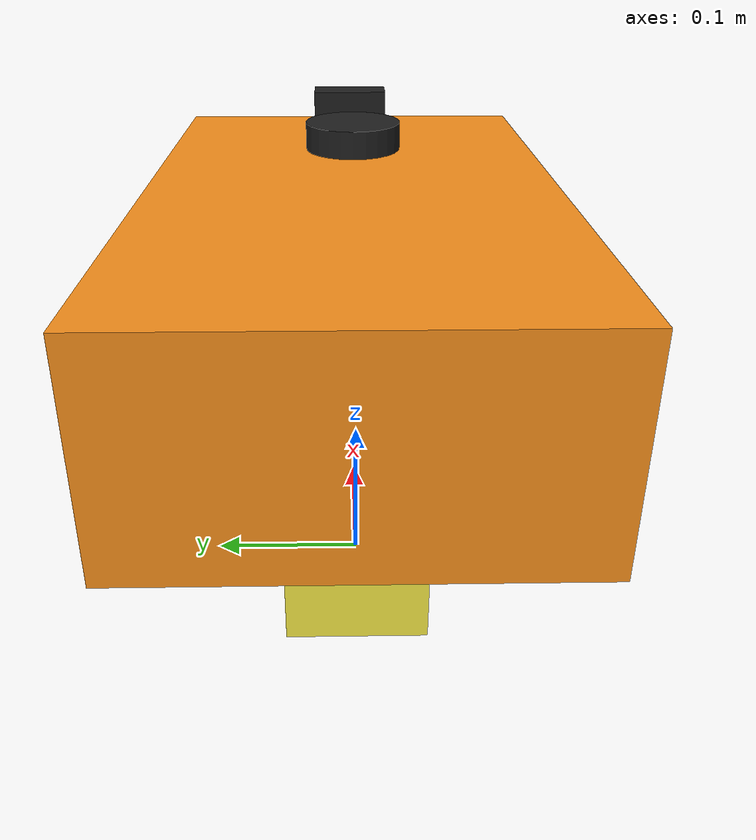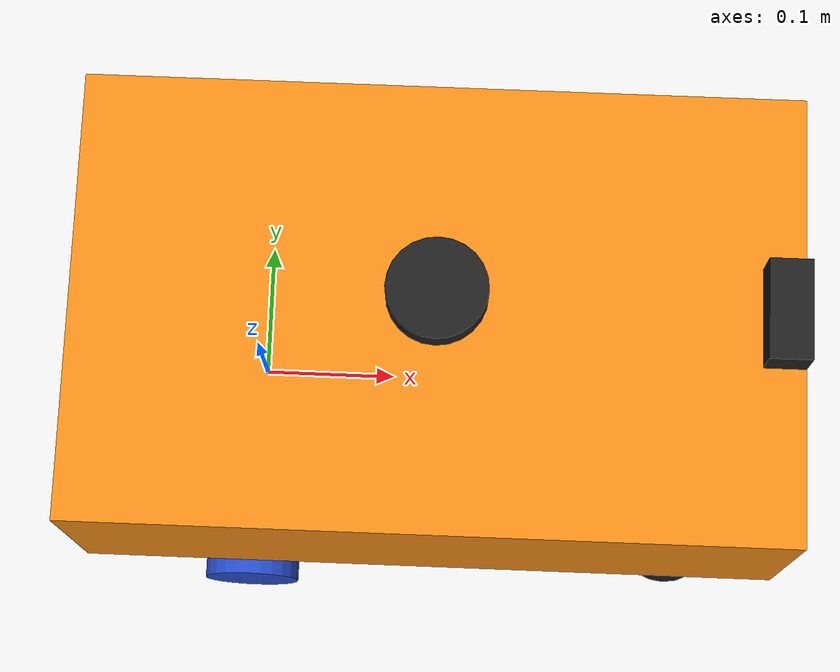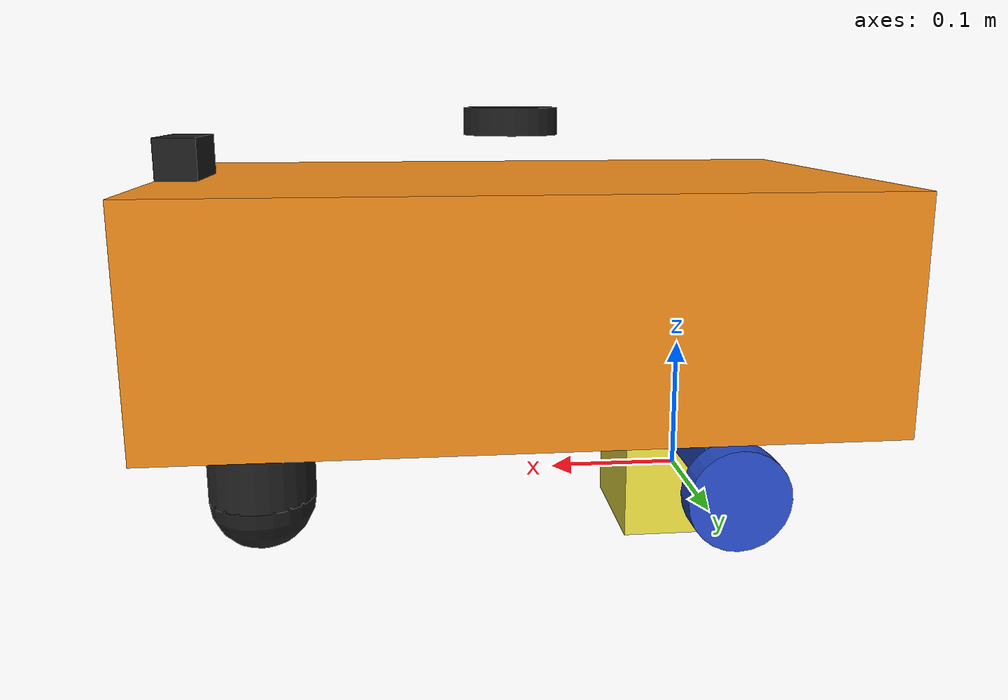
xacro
<?xml version="1.0"?>

<robot xmlns:xacro="http://www.ros.org/wiki/xacro" name="robot">
    <xacro:arg name = "use_ros2_control" default="true" />
    <xacro:arg name = "use_sim_mode" default="false" />

    <xacro:include filename="common_dimensions.xacro" />
    <xacro:include filename="colours.xacro" />
    <xacro:include filename="robot_chassis.xacro" />

    <xacro:if value = "$(arg use_ros2_control)">
        <xacro:include filename="ros2_control.xacro" />
    </xacro:if>

    <xacro:unless value = "$(arg use_ros2_control)">
        <xacro:include filename="gazebo_control.xacro" />
    </xacro:unless>

    <xacro:include filename="imu.xacro" />
    <xacro:include filename="camera.xacro" />
    <xacro:include filename="lidar.xacro" />
</robot>

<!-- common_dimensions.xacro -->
<robot xmlns:xacro="http://www.ros.org/wiki/xacro" >
    <xacro:property name="in_to_m" value="0.0254" />
    <xacro:property name="chassis_length_x" value="${20 * in_to_m}" />
    <xacro:property name="chassis_width_y" value="${12.5 * in_to_m}" />
    <xacro:property name="chassis_height_z" value="${6.5 * in_to_m}" />
    <xacro:property name="cor_to_rear_of_chassis" value="0.12" />
    <xacro:property name="front_of_chassis_to_caster" value="${3 * in_to_m}" />
    <xacro:property name="motor_length" value="0.1" />
    <xacro:property name="wheel_radius" value="0.035" />
    <xacro:property name="wheel_length" value="0.02" />
    <xacro:property name="caster_height" value="${wheel_radius * 2}" />

    <xacro:property name="inter_motor_distance" value="${4 * in_to_m}" />
    <xacro:property name="robot_height" value="${chassis_height_z + wheel_radius * 2}" />
</robot>

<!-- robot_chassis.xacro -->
<robot xmlns:xacro="http://www.ros.org/wiki/xacro" >

    <xacro:include filename="inertial_macros.xacro"/>

    <!-- BASE LINK -->
    <link name="base_link">

    </link>

    <!-- BASE FOOTPRINT LINK -->
    <joint name="base_footprint_joint" type="fixed">
        <parent link="base_link" />
        <child link="base_footprint" />
        <origin xyz="0 0 0" rpy="0 0 0" />
    </joint>

    <link name="base_footprint">

    </link>

    <!-- CHASSIS LINK -->
    <joint name="chassis_joint" type="fixed">
        <parent link="base_link"/>
        <child link="chassis"/>
        <origin xyz="-${cor_to_rear_of_chassis} 0 0"/>
    </joint>

    <link name="chassis">
        <visual>
            <origin xyz="${chassis_length_x / 2} 0 ${chassis_height_z / 2 + caster_height}"/>
            <geometry>
                <box size="${chassis_length_x} ${chassis_width_y} ${chassis_height_z}"/>
            </geometry>
            <material name="orange"/>
        </visual>
        <collision>
            <origin xyz="${chassis_length_x / 2} 0 ${chassis_height_z / 2 + caster_height}"/>
            <geometry>
                <box size="${chassis_length_x} ${chassis_width_y} ${chassis_height_z}"/>
            </geometry>
        </collision>
        <xacro:inertial_box mass="2.0" x="${chassis_length_x}" y="${chassis_width_y}" z="${chassis_height_z}">
            <origin xyz="${chassis_length_x / 2} 0 ${chassis_height_z + caster_height}" rpy="0 0 0"/>
        </xacro:inertial_box>
    </link>

    <gazebo reference="chassis">
        <material>Gazebo/Orange</material>
    </gazebo>

    <!-- LEFT WHEEL APPARATUS -->

    <joint name="left_wheel_strut_joint" type="fixed">
        <parent link="base_link" />
        <child link="left_wheel_strut" />
        <origin xyz="0 ${inter_motor_distance / 2} ${wheel_radius}" rpy="0 0 0" />
    </joint>

    <link name="left_wheel_strut">
        <visual>
            <origin xyz="0 ${(motor_length - wheel_length) / 2} ${(wheel_radius) / 2}"/>
            <geometry>
                <box size="${(wheel_radius)} ${motor_length} ${wheel_radius}" />
            </geometry>
            <material name="blue"/>
        </visual>
        <collision>
            <origin xyz="0 ${(motor_length - wheel_length) / 2} ${(wheel_radius) / 2}"/>
            <geometry>
                <box size="${(wheel_radius)} ${motor_length} ${wheel_radius}" />
            </geometry>
        </collision>
    </link>

    <gazebo reference="left_wheel_strut">
        <material>Gazebo/Blue</material>
    </gazebo>

    <!-- LEFT WHEEL LINK -->

    <joint name="left_wheel_joint" type="continuous">
        <parent link="base_link"/>
        <child link="left_wheel"/>
        <origin xyz="0 ${chassis_width_y / 2} ${wheel_radius}" rpy="-${pi/2} 0 0" />
        <axis xyz="0 0 1"/>
    </joint>

    <link name="left_wheel">
        <visual>
            <geometry>
                <cylinder radius="${wheel_radius}" length="${wheel_length}"/>
            </geometry>
            <material name="blue"/>
        </visual>
        <collision>
            <geometry>
                <cylinder radius="${wheel_radius}" length="${wheel_length}"/>
            </geometry>
        </collision>
        <xacro:inertial_cylinder mass="0.2" length="${wheel_length}" radius="${wheel_radius}">
            <origin xyz="0 0 0" rpy="0 0 0"/>
        </xacro:inertial_cylinder>
    </link>

    <gazebo reference="left_wheel">
        <material>Gazebo/Blue</material>
    </gazebo>

    <!-- RIGHT WHEEL APPARATUS -->

    <joint name="right_wheel_strut_joint" type="fixed">
        <parent link="base_link" />
        <child link="right_wheel_strut" />
        <origin xyz="0 -${inter_motor_distance / 2} ${wheel_radius}" rpy="0 0 0" />
    </joint>

    <link name="right_wheel_strut">
        <visual>
            <origin xyz="0 -${(motor_length - wheel_length) / 2} ${(wheel_radius) / 2}"/>
            <geometry>
                <box size="${(wheel_radius)} ${motor_length} ${wheel_radius}" />
            </geometry>
            <material name="blue"/>
        </visual>
        <collision>
            <origin xyz="0 -${(motor_length - wheel_length) / 2} ${(wheel_radius) / 2}"/>
            <geometry>
                <box size="${(wheel_radius)} ${motor_length} ${wheel_radius}" />
            </geometry>
        </collision>
    </link>

    <gazebo reference="right_wheel_strut">
        <material>Gazebo/Blue</material>
    </gazebo>

    <!-- RIGHT WHEEL LINK -->

    <joint name="right_wheel_joint" type="continuous">
        <parent link="base_link"/>
        <child link="right_wheel"/>
        <origin xyz="0 -${chassis_width_y / 2} ${wheel_radius}" rpy="${pi/2} 0 0" />
        <axis xyz="0 0 -1"/>
    </joint>

    <link name="right_wheel">
        <visual>
            <geometry>
                <cylinder radius="${wheel_radius}" length="${wheel_length}"/>
            </geometry>
            <material name="blue"/>
        </visual>
                <collision>
            <geometry>
                <cylinder radius="${wheel_radius}" length="${wheel_length}"/>
            </geometry>
        </collision>
        <xacro:inertial_cylinder mass="0.2" length="${wheel_length}" radius="${wheel_radius}">
            <origin xyz="0 0 0" rpy="0 0 0"/>
        </xacro:inertial_cylinder>
    </link>

    <gazebo reference="right_wheel">
        <material>Gazebo/Blue</material>
    </gazebo>

    <!-- LEFT CASTER WHEEL LINK -->

    <joint name="left_caster_joint" type="fixed">
        <parent link="chassis"/>
        <child link="left_caster_shaft"/>
        <origin xyz="${chassis_length_x - front_of_chassis_to_caster} ${chassis_width_y / 2 - wheel_radius} ${wheel_radius * 1.5}" rpy="0 0 0"/>
    </joint>

    <link name="left_caster_shaft">
        <visual>
            <geometry>
                <cylinder radius="${wheel_radius}" length="${wheel_radius}"/>
            </geometry>
            <material name="black"/>
        </visual>
        <collision>
            <geometry>
                <cylinder radius="${wheel_radius}" length="${wheel_radius}"/>
            </geometry>
        </collision>
        <xacro:inertial_cylinder mass="0.1" length="${wheel_radius}" radius="${wheel_radius}">
            <origin xyz="0 0 0" rpy="0 0 0"/>
        </xacro:inertial_cylinder>
    </link>

    <gazebo reference="left_caster_shaft">
        <material>Gazebo/Black</material>
    </gazebo>

    <joint name="left_caster_wheel_joint" type="fixed">
        <parent link="chassis" />
        <child link="left_caster_wheel" />
        <origin xyz="${chassis_length_x - front_of_chassis_to_caster} ${chassis_width_y / 2 - wheel_radius} ${wheel_radius}" rpy="0 0 0"/>
    </joint>

    <link name="left_caster_wheel">
        <visual>
            <geometry>
                <sphere radius="${wheel_radius}"/>
            </geometry>
            <material name="black"/>
        </visual>
        <collision>
            <geometry>
                <sphere radius="${wheel_radius}"/>
            </geometry>
        </collision>
        <xacro:inertial_sphere mass="0.1" radius="${wheel_radius}">
            <origin xyz="0 0 0" rpy="0 0 0"/>
        </xacro:inertial_sphere>
    </link>

    <gazebo reference="left_caster_wheel">
        <material>Gazebo/Black</material>
        <mu1 value="0.000001"/>
        <mu2 value="0.000001"/>
    </gazebo>

    <!-- RIGHT CASTER WHEEL LINK -->
    <joint name="right_caster_joint" type="fixed">
        <parent link="chassis"/>
        <child link="right_caster_shaft"/>
        <origin xyz="${chassis_length_x - front_of_chassis_to_caster} ${(chassis_width_y / 2 - wheel_radius) * -1} ${wheel_radius * 1.5}" rpy="0 0 0"/>
    </joint>

    <link name="right_caster_shaft">
        <visual>
            <geometry>
                <cylinder radius="${wheel_radius}" length="${wheel_radius}"/>
            </geometry>
            <material name="black"/>
        </visual>
        <collision>
            <geometry>
                <cylinder radius="${wheel_radius}" length="${wheel_radius}"/>
            </geometry>
        </collision>
        <xacro:inertial_cylinder mass="0.1" length="${wheel_radius}" radius="${wheel_radius}">
            <origin xyz="0 0 0" rpy="0 0 0"/>
        </xacro:inertial_cylinder>
    </link>

    <gazebo reference="right_caster_shaft">
        <material>Gazebo/Black</material>
    </gazebo>

    <joint name="right_caster_wheel_joint" type="fixed">
        <parent link="chassis" />
        <child link="right_caster_wheel" />
        <origin xyz="${chassis_length_x - front_of_chassis_to_caster} ${(chassis_width_y / 2 - wheel_radius) * -1.0} ${wheel_radius}" rpy="0 0 0"/>
    </joint>

    <link name="right_caster_wheel">
        <visual>
            <geometry>
                <sphere radius="${wheel_radius}"/>
            </geometry>
            <material name="black"/>
        </visual>
        <collision>
            <geometry>
                <sphere radius="${wheel_radius}"/>
            </geometry>
        </collision>
        <xacro:inertial_sphere mass="0.1" radius="${wheel_radius}">
            <origin xyz="0 0 0" rpy="0 0 0"/>
        </xacro:inertial_sphere>
    </link>

    <gazebo reference="right_caster_wheel">
        <material>Gazebo/Black</material>
        <mu1 value="0.000001"/>
        <mu2 value="0.000001"/>
    </gazebo>

</robot>

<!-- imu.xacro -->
<robot xmlns:xacro="http://www.ros.org/wiki/xacro" >

    <link name="imu_link">
        <visual>
            <geometry>
                <box size="0.1 0.1 0.1"/>
            </geometry>
        </visual>

        <collision>
            <geometry>
                <box size="0.1 0.1 0.1"/>
            </geometry>
        </collision>

    </link>

    <joint name="imu_joint" type="fixed">
        <parent link="base_link"/>
        <child link="imu_link"/>
        <origin xyz="0 0 0.01"/>
    </joint>

    <gazebo reference="imu_link">
        <sensor name="imu_sensor" type="imu">
            <plugin filename="libgz-sim-imu-system.so" name="gz::sim::systems::Imu">
                <initial_orientation_as_reference>false</initial_orientation_as_reference>
            </plugin>
            <always_on>true</always_on>
            <update_rate>100</update_rate>
            <visualize>true</visualize>
            <topic>imu</topic>
            <imu>
                <angular_velocity>
                    <x>
                        <noise type="gaussian">
                            <mean>0.0</mean>
                            <stddev>2e-4</stddev>
                            <bias_mean>0.0000075</bias_mean>
                            <bias_stddev>0.0000008</bias_stddev>
                        </noise>
                    </x>
                    <y>
                        <noise type="gaussian">
                            <mean>0.0</mean>
                            <stddev>2e-4</stddev>
                            <bias_mean>0.0000075</bias_mean>
                            <bias_stddev>0.0000008</bias_stddev>
                        </noise>
                    </y>
                    <z>
                        <noise type="gaussian">
                            <mean>0.0</mean>
                            <stddev>2e-4</stddev>
                            <bias_mean>0.0000075</bias_mean>
                            <bias_stddev>0.0000008</bias_stddev>
                        </noise>
                    </z>
                </angular_velocity>
                <linear_acceleration>
                    <x>
                        <noise type="gaussian">
                            <mean>0.0</mean>
                            <stddev>1.7e-2</stddev>
                            <bias_mean>0.1</bias_mean>
                            <bias_stddev>0.001</bias_stddev>
                        </noise>
                    </x>
                    <y>
                        <noise type="gaussian">
                            <mean>0.0</mean>
                            <stddev>1.7e-2</stddev>
                            <bias_mean>0.1</bias_mean>
                            <bias_stddev>0.001</bias_stddev>
                        </noise>
                    </y>
                    <z>
                        <noise type="gaussian">
                            <mean>0.0</mean>
                            <stddev>1.7e-2</stddev>
                            <bias_mean>0.1</bias_mean>
                            <bias_stddev>0.001</bias_stddev>
                        </noise>
                    </z>
                </linear_acceleration>
            </imu>
        </sensor>
    </gazebo>

</robot>

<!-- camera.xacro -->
<robot xmlns:xacro="http://www.ros.org/wiki/xacro" >

    <xacro:property name="camera_length" value="0.03" />
    <xacro:property name="camera_width" value="0.07" />
    <xacro:property name="camera_height" value="0.03" />

    <joint name="camera_joint" type="fixed">
        <parent link="chassis" />
        <child link="camera_link" />
        <origin xyz = "${chassis_length_x - camera_length / 2} 0 ${robot_height + camera_height / 2}" rpy = "0 0 0" />
    </joint>

    <link name="camera_link">
        <visual>
            <geometry>
                <box size = "${camera_length} ${camera_width} ${camera_height}" />
            </geometry>
            <material name="black" />
        </visual>
    </link>

    <joint name="camera_joint_optical" type="fixed">
        <parent link="camera_link" />
        <child link="camera_link_optical" />
        <origin xyz = "0 0 0" rpy = "${-pi/2} 0 ${-pi/2}" />
    </joint>

    <link name="camera_link_optical"></link>

    <gazebo reference="camera_link">
        <material>Gazebo/Black</material>

        <sensor name="camera" type="camera">
            <pose> 0 0 0 0 0 0 </pose>
            <visualize>true</visualize>
            <update_rate>10</update_rate>
            <camera_info_topic>camera/camera_info</camera_info_topic>
            <camera>
                <horizontal_fov>1.089</horizontal_fov>
                <image>
                    <format>R8G8B8</format>
                    <width>640</width>
                    <height>480</height>
                </image>
                <clip>
                    <near>0.05</near>
                    <far>8.0</far>
                </clip>
            </camera>
            <topic>camera/image_raw</topic>
            <gz_frame_id>camera_link_optical</gz_frame_id>
        </sensor>
    </gazebo>

</robot>

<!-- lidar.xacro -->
<robot xmlns:xacro="http://www.ros.org/wiki/xacro">

    <joint name="laser_joint" type="fixed">
        <parent link="chassis" />
        <child link="laser_frame"/>
        <origin xyz = "${(chassis_length_x / 2)} 0 ${robot_height + wheel_length / 2 + camera_height}" rpy="0 0 0" />
    </joint>

    <link name="laser_frame">
        <visual>
            <geometry>
                <cylinder radius = "${wheel_radius}" length="${wheel_length}" />
            </geometry>
            <material name="black" />
        </visual>
        <collision>
            <geometry>
                <cylinder radius = "${wheel_radius}" length="${wheel_length}" />
            </geometry>
        </collision>
    </link>

    <gazebo reference="laser_frame">
        <material>Gazebo/Black</material>

        <sensor name="laser" type="gpu_lidar">
            <pose> 0 0 0 0 0 0 </pose>
            <visualize>false</visualize>
            <update_rate>10</update_rate>
            <lidar>
                <scan>
                    <horizontal>
                        <samples>360</samples>
                        <min_angle>-3.14</min_angle>
                        <max_angle>3.14</max_angle>
                    </horizontal>
                </scan>
                <range>
                    <min>0.3</min>
                    <max>12</max>
                </range>
            </lidar>
            <topic>scan</topic>
            <gz_frame_id>laser_frame</gz_frame_id>
        </sensor>
    </gazebo>
</robot>
